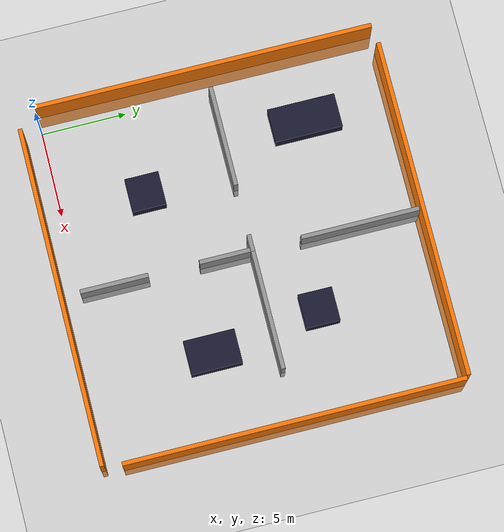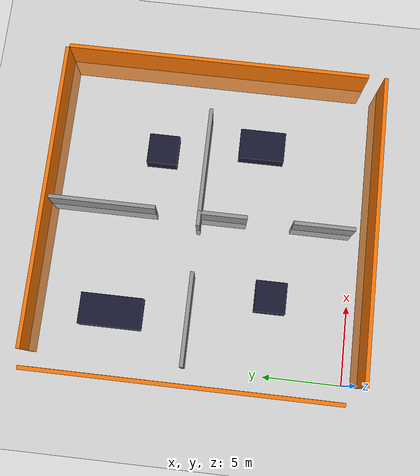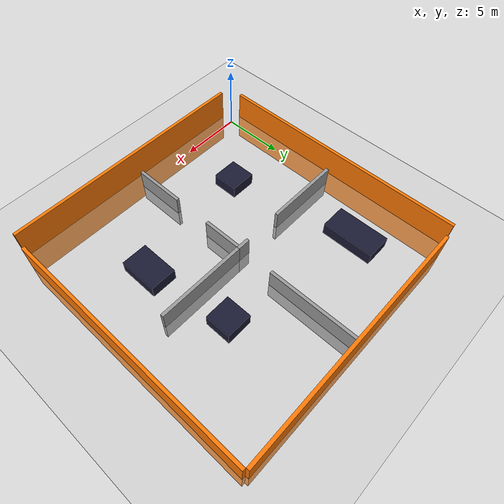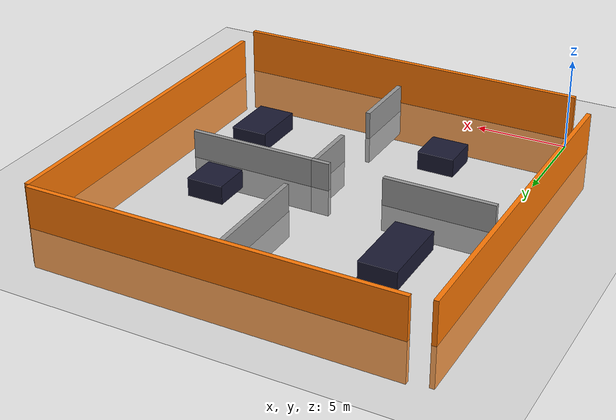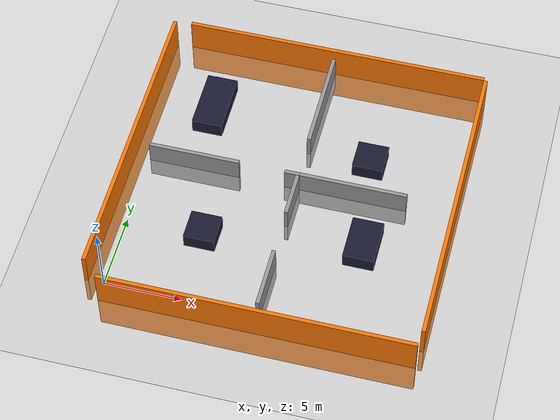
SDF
<?xml version="1.0"?>
<sdf version='1.5'>
  <world name='default'>
    <gui fullscreen='0'>
      <camera name='user_camera'>
        <pose>-8.89 -14.33 12.97 0 0.58 0.84</pose>
        <track_visual>
          <static>1</static>
          <use_model_frame>1</use_model_frame>
          <xyz>-3 0 1</xyz>
          <inherit_yaw>1</inherit_yaw>
        </track_visual>
        <view_controller>orbit</view_controller>
        <projection_type>perspective</projection_type>
      </camera>
    </gui>
    <spherical_coordinates>
      <latitude_deg>48.8789</latitude_deg>
      <longitude_deg>2.36778</longitude_deg>
      <surface_model>EARTH_WGS84</surface_model>
      <elevation>0</elevation>
      <heading_deg>0</heading_deg>
    </spherical_coordinates>
    <physics name='default_physics' default='0' type='ode'>
      <real_time_update_rate>1000</real_time_update_rate>
      <max_step_size>0.001</max_step_size>
      <real_time_factor>1</real_time_factor>
      <max_contacts>20</max_contacts>
      <gravity>0 0 -9.81</gravity>
      <magnetic_field>0 2.1e-05 -4.3e-05</magnetic_field>
      <ode>
        <solver>
          <type>world</type>
          <min_step_size>0.0001</min_step_size>
          <iters>50</iters>
          <precon_iters>0</precon_iters>
          <sor>1.4</sor>
          <use_dynamic_moi_rescaling>1</use_dynamic_moi_rescaling>
        </solver>
        <constraints>
          <cfm>0</cfm>
          <erp>0.2</erp>
          <contact_max_correcting_vel>100</contact_max_correcting_vel>
          <contact_surface_layer>0.001</contact_surface_layer>
        </constraints>
      </ode>
    </physics>

    <model name='wall_0'>
      <pose>10.0 -1.125 0 0 -0 0</pose>
      <link name='Wall_0'>
        <collision name='Wall_0_Collision'>
          <geometry>
            <box>
              <size>20 0.25 5</size>
            </box>
          </geometry>
          <pose>0 0 0 0 -0 0</pose>
          <max_contacts>10</max_contacts>
          <surface>
            <contact>
              <ode/>
            </contact>
            <bounce/>
            <friction>
              <torsional>
                <ode/>
              </torsional>
              <ode/>
            </friction>
          </surface>
        </collision>
        <visual name='Wall_0_Visual'>
          <pose>0 0 0 0 0 0</pose>
          <geometry>
            <box>
              <size>20 0.25 5</size>
            </box>
          </geometry>
          <material>
            <script>
              <uri>model://wall/materials/scripts</uri>
              <uri>model://wall/materials/textures</uri>
              <name>Wall/NiceWall</name>
            </script>
            <ambient>0.996078 0.47451 0.0196078 1</ambient>
          </material>
        </visual>
        <pose>0 0 0 0 0 0</pose>
        <self_collide>0</self_collide>
        <enable_wind>0</enable_wind>
        <kinematic>0</kinematic>
        <gravity>1</gravity>
      </link>
      <static>1</static>
    </model>
    <model name='wall_1'>
      <pose>10.0 20.125 0 0 0 0</pose>
      <link name='Wall_0'>
        <collision name='Wall_0_Collision'>
          <geometry>
            <box>
              <size>20 0.25 5</size>
            </box>
          </geometry>
          <pose>0 0 0 0 -0 0</pose>
          <max_contacts>10</max_contacts>
          <surface>
            <contact>
              <ode/>
            </contact>
            <bounce/>
            <friction>
              <torsional>
                <ode/>
              </torsional>
              <ode/>
            </friction>
          </surface>
        </collision>
        <visual name='Wall_0_Visual'>
          <pose>0 0 0 0 0 0</pose>
          <geometry>
            <box>
              <size>20 0.25 4.5</size>
            </box>
          </geometry>
          <material>
            <script>
              <uri>model://wall/materials/scripts</uri>
              <uri>model://wall/materials/textures</uri>
              <name>Wall/NiceWall</name>
            </script>
            <ambient>0.996078 0.47451 0.0196078 1</ambient>
          </material>
        </visual>
        <pose>0 0 0 0 0 0</pose>
        <self_collide>0</self_collide>
        <enable_wind>0</enable_wind>
        <kinematic>0</kinematic>
        <gravity>1</gravity>
      </link>
      <static>1</static>
    </model>
    <model name='wall_2'>
      <pose>20.125 10 0 0 0 0</pose>
      <link name='Wall_0'>
        <collision name='Wall_0_Collision'>
          <geometry>
            <box>
              <size>20 0.25 5</size>
            </box>
          </geometry>
          <pose>0 0 0 0 -0 0</pose>
          <max_contacts>10</max_contacts>
          <surface>
            <contact>
              <ode/>
            </contact>
            <bounce/>
            <friction>
              <torsional>
                <ode/>
              </torsional>
              <ode/>
            </friction>
          </surface>
        </collision>
        <visual name='Wall_0_Visual'>
          <pose>0 0 0 0 0 0</pose>
          <geometry>
            <box>
              <size>20 0.25 4.5</size>
            </box>
          </geometry>
          <material>
            <script>
              <uri>model://wall/materials/scripts</uri>
              <uri>model://wall/materials/textures</uri>
              <name>Wall/NiceWall</name>
            </script>
            <ambient>0.996078 0.47451 0.0196078 1</ambient>
          </material>
        </visual>
        <pose>0 0 0 0 0 1.57</pose>
        <self_collide>0</self_collide>
        <enable_wind>0</enable_wind>
        <kinematic>0</kinematic>
        <gravity>1</gravity>
      </link>
      <static>1</static>
    </model>
    <model name='wall_3'>
      <pose>-1.125 10 0 0 0 0</pose>
      <link name='Wall_0'>
        <collision name='Wall_0_Collision'>
          <geometry>
            <box>
              <size>20 0.25 5</size>
            </box>
          </geometry>
          <pose>0 0 0 0 -0 0</pose>
          <max_contacts>10</max_contacts>
          <surface>
            <contact>
              <ode/>
            </contact>
            <bounce/>
            <friction>
              <torsional>
                <ode/>
              </torsional>
              <ode/>
            </friction>
          </surface>
        </collision>
        <visual name='Wall_0_Visual'>
          <pose>0 0 0 0 0 0</pose>
          <geometry>
            <box>
              <size>20 0.25 4.5</size>
            </box>
          </geometry>
          <material>
            <script>
              <uri>model://wall/materials/scripts</uri>
              <uri>model://wall/materials/textures</uri>
              <name>Wall/NiceWall</name>
            </script>
            <ambient>0.996078 0.47451 0.0196078 1</ambient>
          </material>
        </visual>
        <pose>0 0 0 0 0 1.57</pose>
        <self_collide>0</self_collide>
        <enable_wind>0</enable_wind>
        <kinematic>0</kinematic>
        <gravity>1</gravity>
      </link>
      <static>1</static>
    </model>

    <model name='grey_wall_0'>
      <static>1</static>
      <link name='link'>
        <pose>16.5 -9.875 0 0 -0 0</pose>
        <collision name='collision'>
          <geometry>
            <box>
              <size>7.0 0.25 3</size>
            </box>
          </geometry>
          <max_contacts>10</max_contacts>
          <surface>
            <contact>
              <ode/>
            </contact>
            <bounce/>
            <friction>
              <torsional>
                <ode/>
              </torsional>
              <ode/>
            </friction>
          </surface>
        </collision>
        <visual name='visual'>
          <cast_shadows>0</cast_shadows>
          <geometry>
            <box>
              <size>7.0 0.25 3</size>
            </box>
          </geometry>
          <material>
            <script>
              <uri>model://grey_wall/materials/scripts</uri>
              <uri>model://grey_wall/materials/textures</uri>
              <name>vrc/grey_wall</name>
            </script>
          </material>
        </visual>
        <self_collide>0</self_collide>
        <enable_wind>0</enable_wind>
        <kinematic>0</kinematic>
        <gravity>1</gravity>
      </link>
      <pose>0 0 0 0 -0 1.57</pose>
    </model>
    <model name='grey_wall_1'>
      <static>1</static>
      <link name='link'>
        <pose>3 10.125 0 0 -0 0</pose>
        <collision name='collision'>
          <geometry>
            <box>
              <size>6.0 0.25 3</size>
            </box>
          </geometry>
          <max_contacts>10</max_contacts>
          <surface>
            <contact>
              <ode/>
            </contact>
            <bounce/>
            <friction>
              <torsional>
                <ode/>
              </torsional>
              <ode/>
            </friction>
          </surface>
        </collision>
        <visual name='visual'>
          <cast_shadows>0</cast_shadows>
          <geometry>
            <box>
              <size>6.0 0.25 3</size>
            </box>
          </geometry>
          <material>
            <script>
              <uri>model://grey_wall/materials/scripts</uri>
              <uri>model://grey_wall/materials/textures</uri>
              <name>vrc/grey_wall</name>
            </script>
          </material>
        </visual>
        <self_collide>0</self_collide>
        <enable_wind>0</enable_wind>
        <kinematic>0</kinematic>
        <gravity>1</gravity>
      </link>
      <pose>0 0 0 0 -0 0</pose>
    </model>
    <model name='grey_wall_2'>
      <static>1</static>
      <link name='link'>
        <pose>9.5 10.125 0 0 -0 0</pose>
        <collision name='collision'>
          <geometry>
            <box>
              <size>1.0 0.25 3</size>
            </box>
          </geometry>
          <max_contacts>10</max_contacts>
          <surface>
            <contact>
              <ode/>
            </contact>
            <bounce/>
            <friction>
              <torsional>
                <ode/>
              </torsional>
              <ode/>
            </friction>
          </surface>
        </collision>
        <visual name='visual'>
          <cast_shadows>0</cast_shadows>
          <geometry>
            <box>
              <size>1.0 0.25 3</size>
            </box>
          </geometry>
          <material>
            <script>
              <uri>model://grey_wall/materials/scripts</uri>
              <uri>model://grey_wall/materials/textures</uri>
              <name>vrc/grey_wall</name>
            </script>
          </material>
        </visual>
        <self_collide>0</self_collide>
        <enable_wind>0</enable_wind>
        <kinematic>0</kinematic>
        <gravity>1</gravity>
      </link>
      <pose>0 0 0 0 -0 0</pose>
    </model>
    <model name='grey_wall_3'>
      <static>1</static>
      <link name='link'>
        <pose>2 -9.875 0 0 -0 0</pose>
        <collision name='collision'>
          <geometry>
            <box>
              <size>4.0 0.25 3</size>
            </box>
          </geometry>
          <max_contacts>10</max_contacts>
          <surface>
            <contact>
              <ode/>
            </contact>
            <bounce/>
            <friction>
              <torsional>
                <ode/>
              </torsional>
              <ode/>
            </friction>
          </surface>
        </collision>
        <visual name='visual'>
          <cast_shadows>0</cast_shadows>
          <geometry>
            <box>
              <size>4.0 0.25 3</size>
            </box>
          </geometry>
          <material>
            <script>
              <uri>model://grey_wall/materials/scripts</uri>
              <uri>model://grey_wall/materials/textures</uri>
              <name>vrc/grey_wall</name>
            </script>
          </material>
        </visual>
        <self_collide>0</self_collide>
        <enable_wind>0</enable_wind>
        <kinematic>0</kinematic>
        <gravity>1</gravity>
      </link>
      <pose>0 0 0 0 -0 1.57</pose>
    </model>
    <model name='grey_wall_4'>
      <static>1</static>
      <link name='link'>
        <pose>8.5 -9.875 0 0 -0 0</pose>
        <collision name='collision'>
          <geometry>
            <box>
              <size>3.0 0.25 3</size>
            </box>
          </geometry>
          <max_contacts>10</max_contacts>
          <surface>
            <contact>
              <ode/>
            </contact>
            <bounce/>
            <friction>
              <torsional>
                <ode/>
              </torsional>
              <ode/>
            </friction>
          </surface>
        </collision>
        <visual name='visual'>
          <cast_shadows>0</cast_shadows>
          <geometry>
            <box>
              <size>3.0 0.251 3</size>
            </box>
          </geometry>
          <material>
            <script>
              <uri>model://grey_wall/materials/scripts</uri>
              <uri>model://grey_wall/materials/textures</uri>
              <name>vrc/grey_wall</name>
            </script>
          </material>
        </visual>
        <self_collide>0</self_collide>
        <enable_wind>0</enable_wind>
        <kinematic>0</kinematic>
        <gravity>1</gravity>
      </link>
      <pose>0 0 0 0 -0 1.57</pose>
    </model>
    <model name='grey_wall_5'>
      <static>1</static>
      <link name='link'>
        <pose>13.5 10.125 0 0 -0 0</pose>
        <collision name='collision'>
          <geometry>
            <box>
              <size>7.0 0.25 3</size>
            </box>
          </geometry>
          <max_contacts>10</max_contacts>
          <surface>
            <contact>
              <ode/>
            </contact>
            <bounce/>
            <friction>
              <torsional>
                <ode/>
              </torsional>
              <ode/>
            </friction>
          </surface>
        </collision>
        <visual name='visual'>
          <cast_shadows>0</cast_shadows>
          <geometry>
            <box>
              <size>7.0 0.25 3</size>
            </box>
          </geometry>
          <material>
            <script>
              <uri>model://grey_wall/materials/scripts</uri>
              <uri>model://grey_wall/materials/textures</uri>
              <name>vrc/grey_wall</name>
            </script>
          </material>
        </visual>
        <self_collide>0</self_collide>
        <enable_wind>0</enable_wind>
        <kinematic>0</kinematic>
        <gravity>1</gravity>
      </link>
      <pose>0 0 0 0 -0 0</pose>
    </model>

    <model name='unit_box_0'>
      <pose>15 6.5 0.5 0 -0 0</pose>
      <link name='link'>
        <inertial>
          <mass>1</mass>
          <inertia>
            <ixx>0.166667</ixx>
            <ixy>0</ixy>
            <ixz>0</ixz>
            <iyy>0.166667</iyy>
            <iyz>0</iyz>
            <izz>0.166667</izz>
          </inertia>
        </inertial>
        <collision name='collision'>
          <geometry>
            <box>
              <size>2 3 1</size>
            </box>
          </geometry>
          <max_contacts>10</max_contacts>
          <surface>
            <contact>
              <ode/>
            </contact>
            <bounce/>
            <friction>
              <torsional>
                <ode/>
              </torsional>
              <ode/>
            </friction>
          </surface>
        </collision>
        <visual name='visual'>
          <geometry>
            <box>
              <size>2 3 1</size>
            </box>
          </geometry>
          <material>
            <script>
              <name>Gazebo/Grey</name>
              <uri>file://media/materials/scripts/gazebo.material</uri>
            </script>
          <ambient>0.1 0.1 0.1 1</ambient>
          <diffuse>0.1 0.1 0.2 1</diffuse>
          <specular>0 0 0 0</specular>
          <emissive>0 0 0 1</emissive>
          </material>
        </visual>
        <self_collide>0</self_collide>
        <enable_wind>0</enable_wind>
        <kinematic>0</kinematic>
        <gravity>1</gravity>
      </link>
    </model>
    <model name='unit_box_1'>
      <pose>5 5 0.5 0 -0 0</pose>
      <link name='link'>
        <inertial>
          <mass>1</mass>
          <inertia>
            <ixx>0.166667</ixx>
            <ixy>0</ixy>
            <ixz>0</ixz>
            <iyy>0.166667</iyy>
            <iyz>0</iyz>
            <izz>0.166667</izz>
          </inertia>
        </inertial>
        <collision name='collision'>
          <geometry>
            <box>
              <size>2 2 1</size>
            </box>
          </geometry>
          <max_contacts>10</max_contacts>
          <surface>
            <contact>
              <ode/>
            </contact>
            <bounce/>
            <friction>
              <torsional>
                <ode/>
              </torsional>
              <ode/>
            </friction>
          </surface>
        </collision>
        <visual name='visual'>
          <geometry>
            <box>
              <size>2 2 1</size>
            </box>
          </geometry>
          <material>
            <script>
              <name>Gazebo/Grey</name>
              <uri>file://media/materials/scripts/gazebo.material</uri>
            </script>
          <ambient>0.1 0.1 0.1 1</ambient>
          <diffuse>0.1 0.1 0.2 1</diffuse>
          <specular>0 0 0 0</specular>
          <emissive>0 0 0 1</emissive>
          </material>
        </visual>
        <self_collide>0</self_collide>
        <enable_wind>0</enable_wind>
        <kinematic>0</kinematic>
        <gravity>1</gravity>
      </link>
    </model>
    <model name='unit_box_2'>
      <pose>3 15 0.5 0 -0 0</pose>
      <link name='link'>
        <inertial>
          <mass>1</mass>
          <inertia>
            <ixx>0.166667</ixx>
            <ixy>0</ixy>
            <ixz>0</ixz>
            <iyy>0.166667</iyy>
            <iyz>0</iyz>
            <izz>0.166667</izz>
          </inertia>
        </inertial>
        <collision name='collision'>
          <geometry>
            <box>
              <size>2 4 1</size>
            </box>
          </geometry>
          <max_contacts>10</max_contacts>
          <surface>
            <contact>
              <ode/>
            </contact>
            <bounce/>
            <friction>
              <torsional>
                <ode/>
              </torsional>
              <ode/>
            </friction>
          </surface>
        </collision>
        <visual name='visual'>
          <geometry>
            <box>
              <size>2 4 1</size>
            </box>
          </geometry>
          <material>
            <script>
              <name>Gazebo/Grey</name>
              <uri>file://media/materials/scripts/gazebo.material</uri>
            </script>
          <ambient>0.1 0.1 0.1 1</ambient>
          <diffuse>0.1 0.1 0.2 1</diffuse>
          <specular>0 0 0 0</specular>
          <emissive>0 0 0 1</emissive>
          </material>
        </visual>
        <self_collide>0</self_collide>
        <enable_wind>0</enable_wind>
        <kinematic>0</kinematic>
        <gravity>1</gravity>
      </link>
    </model>
    <model name='unit_box_3'>
      <pose>14 13 0.5 0 -0 0</pose>
      <link name='link'>
        <inertial>
          <mass>1</mass>
          <inertia>
            <ixx>0.166667</ixx>
            <ixy>0</ixy>
            <ixz>0</ixz>
            <iyy>0.166667</iyy>
            <iyz>0</iyz>
            <izz>0.166667</izz>
          </inertia>
        </inertial>
        <collision name='collision'>
          <geometry>
            <box>
              <size>2 2 1</size>
            </box>
          </geometry>
          <max_contacts>10</max_contacts>
          <surface>
            <contact>
              <ode/>
            </contact>
            <bounce/>
            <friction>
              <torsional>
                <ode/>
              </torsional>
              <ode/>
            </friction>
          </surface>
        </collision>
        <visual name='visual'>
          <geometry>
            <box>
              <size>2 2 1</size>
            </box>
          </geometry>
          <material>
            <script>
              <name>Gazebo/Grey</name>
              <uri>file://media/materials/scripts/gazebo.material</uri>
            </script>
          <ambient>0.1 0.1 0.1 1</ambient>
          <diffuse>0.1 0.1 0.2 1</diffuse>
          <specular>0 0 0 0</specular>
          <emissive>0 0 0 1</emissive>
          </material>
        </visual>
        <self_collide>0</self_collide>
        <enable_wind>0</enable_wind>
        <kinematic>0</kinematic>
        <gravity>1</gravity>
      </link>
    </model>
    <atmosphere type='adiabatic'>
      <temperature>298.15</temperature>
      <pressure>101325</pressure>
      <temperature_gradient>-0.0065</temperature_gradient>
    </atmosphere>
    <!--Drone description-->
    <plugin name="fwman" filename="libsphinx_fwman.so">
      <spawn_point name="default">
        <pose>-8.875 -8.875 0.2 0 0 0</pose>
      </spawn_point>
    </plugin>

    <!--Scene description-->
    <scene>
      <grid>true</grid>
    </scene>
    <include>
      <uri>model://sun</uri>
    </include>
    <include>
      <uri>model://ground_plane</uri>
    </include>

  </world>
</sdf>
